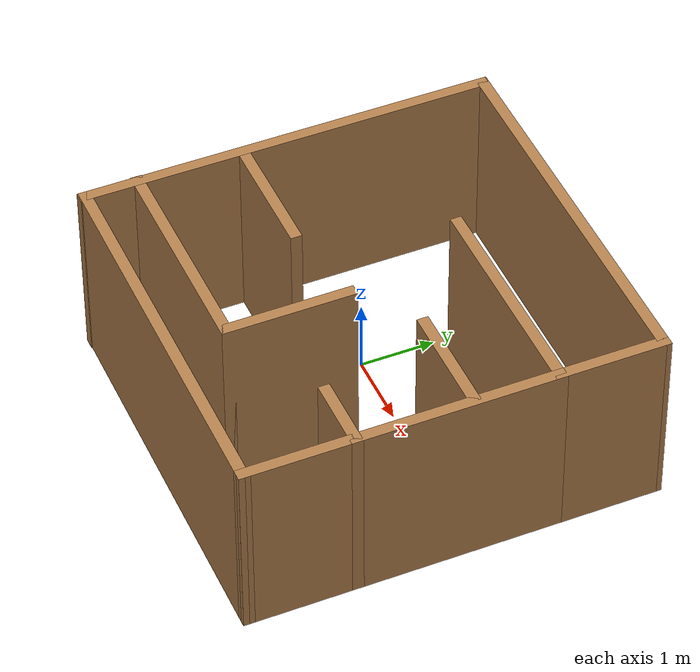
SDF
<?xml version='1.0'?>
<sdf version='1.7'>
  <model name='wall_model'>
    <pose>0.822823 -0.256483 0 0 -0 0</pose>
    <link name='Wall_40'>
      <collision name='Wall_40_Collision'>
        <geometry>
          <box>
            <size>5.5 0.15 2.5</size>
          </box>
        </geometry>
        <pose>0 0 1.25 0 -0 0</pose>
      </collision>
      <visual name='Wall_40_Visual'>
        <pose>0 0 1.25 0 -0 0</pose>
        <geometry>
          <box>
            <size>5.5 0.15 2.5</size>
          </box>
        </geometry>
        <material>
          <script>
            <uri>file://media/materials/scripts/gazebo.material</uri>
            <name>Gazebo/Wood</name>
          </script>
          <ambient>1 1 1 1</ambient>
        </material>
        <meta>
          <layer>0</layer>
        </meta>
      </visual>
      <pose>-2.54586 0 0 0 -0 1.5708</pose>
    </link>
    <link name='Wall_41'>
      <collision name='Wall_41_Collision'>
        <geometry>
          <box>
            <size>5.25 0.15 2.5</size>
          </box>
        </geometry>
        <pose>0 0 1.25 0 -0 0</pose>
      </collision>
      <visual name='Wall_41_Visual'>
        <pose>0 0 1.25 0 -0 0</pose>
        <geometry>
          <box>
            <size>5.25 0.15 2.5</size>
          </box>
        </geometry>
        <material>
          <script>
            <uri>file://media/materials/scripts/gazebo.material</uri>
            <name>Gazebo/Wood</name>
          </script>
          <ambient>1 1 1 1</ambient>
        </material>
        <meta>
          <layer>0</layer>
        </meta>
      </visual>
      <pose>0.004141 2.675 0 0 -0 -0.00451</pose>
    </link>
    <link name='Wall_42'>
      <collision name='Wall_42_Collision'>
        <geometry>
          <box>
            <size>1.5 0.15 2.5</size>
          </box>
        </geometry>
        <pose>0 0 1.25 0 -0 0</pose>
      </collision>
      <visual name='Wall_42_Visual'>
        <pose>0 0 1.25 0 -0 0</pose>
        <geometry>
          <box>
            <size>1.5 0.15 2.5</size>
          </box>
        </geometry>
        <material>
          <script>
            <uri>file://media/materials/scripts/gazebo.material</uri>
            <name>Gazebo/Wood</name>
          </script>
          <ambient>1 1 1 1</ambient>
        </material>
        <meta>
          <layer>0</layer>
        </meta>
      </visual>
      <pose>2.55414 1.9885 0 0 -0 -1.5708</pose>
    </link>
    <link name='Wall_43'>
      <collision name='Wall_43_Collision'>
        <geometry>
          <box>
            <size>3 0.15 2.5</size>
          </box>
        </geometry>
        <pose>0 0 1.25 0 -0 0</pose>
      </collision>
      <visual name='Wall_43_Visual'>
        <pose>0 0 1.25 0 -0 0</pose>
        <geometry>
          <box>
            <size>3 0.15 2.5</size>
          </box>
        </geometry>
        <material>
          <script>
            <uri>file://media/materials/scripts/gazebo.material</uri>
            <name>Gazebo/Wood</name>
          </script>
          <ambient>1 1 1 1</ambient>
        </material>
        <meta>
          <layer>0</layer>
        </meta>
      </visual>
      <pose>1.12914 1.3135 0 0 -0 3.14159</pose>
    </link>
    <link name='Wall_45'>
      <collision name='Wall_45_Collision'>
        <geometry>
          <box>
            <size>2.75 0.15 2.5</size>
          </box>
        </geometry>
        <pose>0 0 1.25 0 -0 0</pose>
      </collision>
      <visual name='Wall_45_Visual'>
        <pose>0 0 1.25 0 -0 0</pose>
        <geometry>
          <box>
            <size>2.75 0.15 2.5</size>
          </box>
        </geometry>
        <material>
          <script>
            <uri>file://media/materials/scripts/gazebo.material</uri>
            <name>Gazebo/Wood</name>
          </script>
          <ambient>1 1 1 1</ambient>
        </material>
        <meta>
          <layer>0</layer>
        </meta>
      </visual>
      <pose>2.55414 0.0135 0 0 -0 -1.5708</pose>
    </link>
    <link name='Wall_47'>
      <collision name='Wall_47_Collision'>
        <geometry>
          <box>
            <size>3 0.15 2.5</size>
          </box>
        </geometry>
        <pose>0 0 1.25 0 -0 0</pose>
      </collision>
      <visual name='Wall_47_Visual'>
        <pose>0 0 1.25 0 -0 0</pose>
        <geometry>
          <box>
            <size>3 0.15 2.5</size>
          </box>
        </geometry>
        <material>
          <script>
            <uri>file://media/materials/scripts/gazebo.material</uri>
            <name>Gazebo/Wood</name>
          </script>
          <ambient>1 1 1 1</ambient>
        </material>
        <meta>
          <layer>0</layer>
        </meta>
      </visual>
      <pose>-1.12945 -1.97516 0 0 -0 0</pose>
    </link>
    <link name='Wall_49'>
      <collision name='Wall_49_Collision'>
        <geometry>
          <box>
            <size>1.75 0.15 2.5</size>
          </box>
        </geometry>
        <pose>0 0 1.25 0 -0 0</pose>
      </collision>
      <visual name='Wall_49_Visual'>
        <pose>0 0 1.25 0 -0 0</pose>
        <geometry>
          <box>
            <size>1.75 0.15 2.5</size>
          </box>
        </geometry>
        <material>
          <script>
            <uri>file://media/materials/scripts/gazebo.material</uri>
            <name>Gazebo/Wood</name>
          </script>
          <ambient>1 1 1 1</ambient>
        </material>
        <meta>
          <layer>0</layer>
        </meta>
      </visual>
      <pose>0.295547 -1.17516 0 0 -0 1.5708</pose>
    </link>
    <link name='Wall_54'>
      <collision name='Wall_54_Collision'>
        <geometry>
          <box>
            <size>1.75 0.15 2.5</size>
          </box>
        </geometry>
        <pose>0 0 1.25 0 -0 0</pose>
      </collision>
      <visual name='Wall_54_Visual'>
        <pose>0 0 1.25 0 -0 0</pose>
        <geometry>
          <box>
            <size>1.75 0.15 2.5</size>
          </box>
        </geometry>
        <material>
          <script>
            <uri>file://media/materials/scripts/gazebo.material</uri>
            <name>Gazebo/Wood</name>
          </script>
          <ambient>1 1 1 1</ambient>
        </material>
        <meta>
          <layer>0</layer>
        </meta>
      </visual>
      <pose>-1.70732 -0.589847 0 0 -0 0</pose>
    </link>
    <link name='Wall_56'>
      <collision name='Wall_56_Collision'>
        <geometry>
          <box>
            <size>1 0.15 2.5</size>
          </box>
        </geometry>
        <pose>0 0 1.25 0 -0 0</pose>
      </collision>
      <visual name='Wall_56_Visual'>
        <pose>0 0 1.25 0 -0 0</pose>
        <geometry>
          <box>
            <size>1 0.15 2.5</size>
          </box>
        </geometry>
        <material>
          <script>
            <uri>file://media/materials/scripts/gazebo.material</uri>
            <name>Gazebo/Wood</name>
          </script>
          <ambient>1 1 1 1</ambient>
        </material>
        <meta>
          <layer>0</layer>
        </meta>
      </visual>
      <pose>2.12914 -1.2865 0 0 -0 3.14159</pose>
    </link>
    <link name='Wall_58'>
      <collision name='Wall_58_Collision'>
        <geometry>
          <box>
            <size>5.25 0.15 2.5</size>
          </box>
        </geometry>
        <pose>0 0 1.25 0 -0 0</pose>
      </collision>
      <visual name='Wall_58_Visual'>
        <pose>0 0 1.25 0 -0 0</pose>
        <geometry>
          <box>
            <size>5.25 0.15 2.5</size>
          </box>
        </geometry>
        <material>
          <script>
            <uri>file://media/materials/scripts/gazebo.material</uri>
            <name>Gazebo/Wood</name>
          </script>
          <ambient>1 1 1 1</ambient>
        </material>
        <meta>
          <layer>0</layer>
        </meta>
      </visual>
      <pose>0.004141 -2.675 0 0 -0 -0.00451</pose>
    </link>
    <link name='Wall_59'>
      <collision name='Wall_59_Collision'>
        <geometry>
          <box>
            <size>1.55 0.15 2.5</size>
          </box>
        </geometry>
        <pose>0 0 1.25 0 -0 0</pose>
      </collision>
      <visual name='Wall_59_Visual'>
        <pose>0 0 1.25 0 -0 0</pose>
        <geometry>
          <box>
            <size>1.55 0.15 2.5</size>
          </box>
        </geometry>
        <material>
          <script>
            <uri>file://media/materials/scripts/gazebo.material</uri>
            <name>Gazebo/Wood</name>
          </script>
          <ambient>1 1 1 1</ambient>
        </material>
        <meta>
          <layer>0</layer>
        </meta>
      </visual>
      <pose>2.55414 -1.9865 0 0 -0 1.5708</pose>
    </link>
    <link name='Wall_61'>
      <collision name='Wall_61_Collision'>
        <geometry>
          <box>
            <size>1.5 0.15 2.5</size>
          </box>
        </geometry>
        <pose>0 0 1.25 0 -0 0</pose>
      </collision>
      <visual name='Wall_61_Visual'>
        <pose>0 0 1.25 0 -0 0</pose>
        <geometry>
          <box>
            <size>1.5 0.15 2.5</size>
          </box>
        </geometry>
        <material>
          <script>
            <uri>file://media/materials/scripts/gazebo.material</uri>
            <name>Gazebo/Wood</name>
          </script>
          <ambient>1 1 1 1</ambient>
        </material>
        <meta>
          <layer>0</layer>
        </meta>
      </visual>
      <pose>1.81306 0.223773 0 0 -0 3.14159</pose>
    </link>
    <static>1</static>
  </model>
</sdf>
